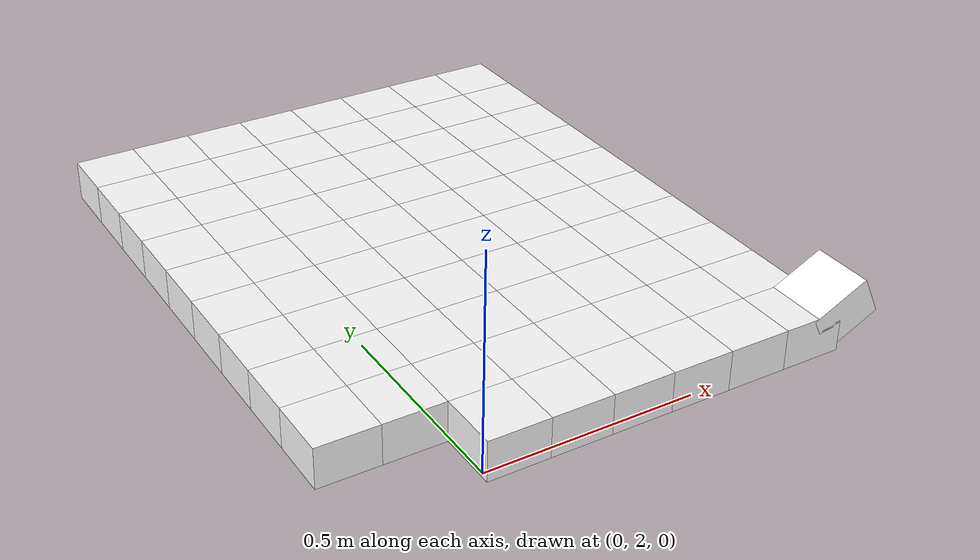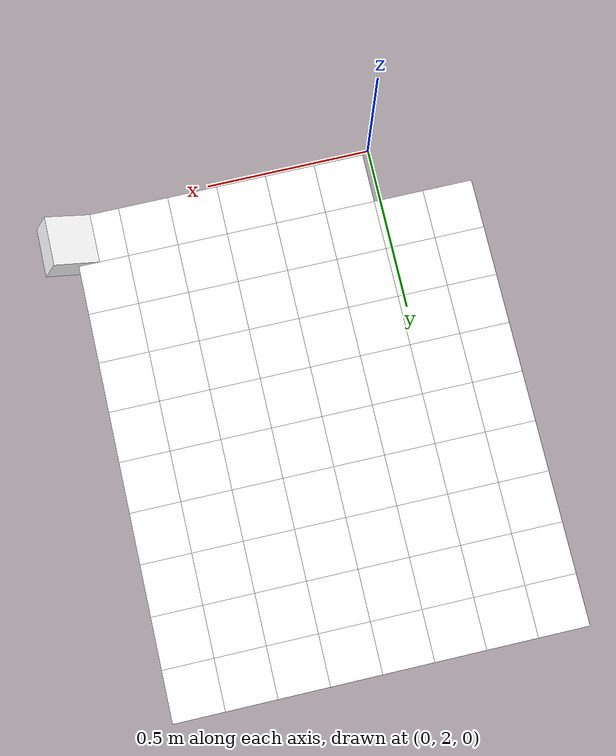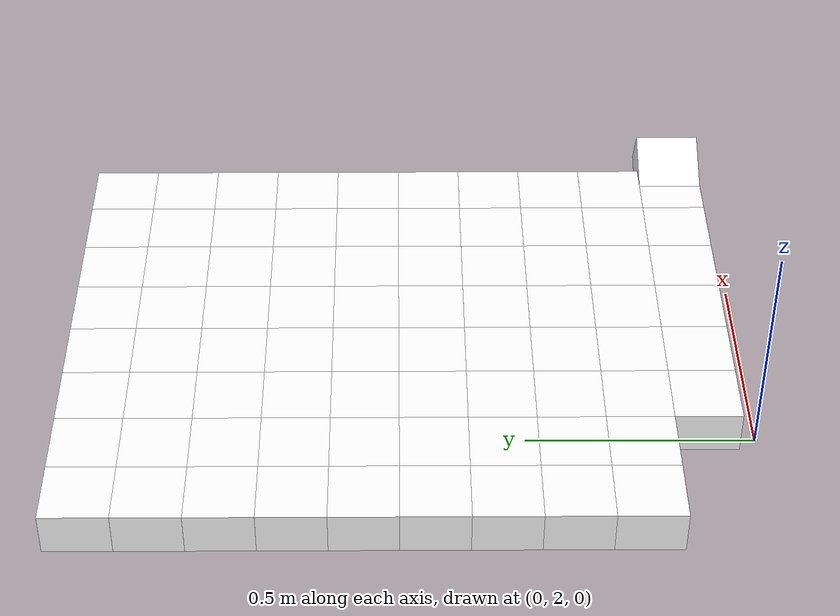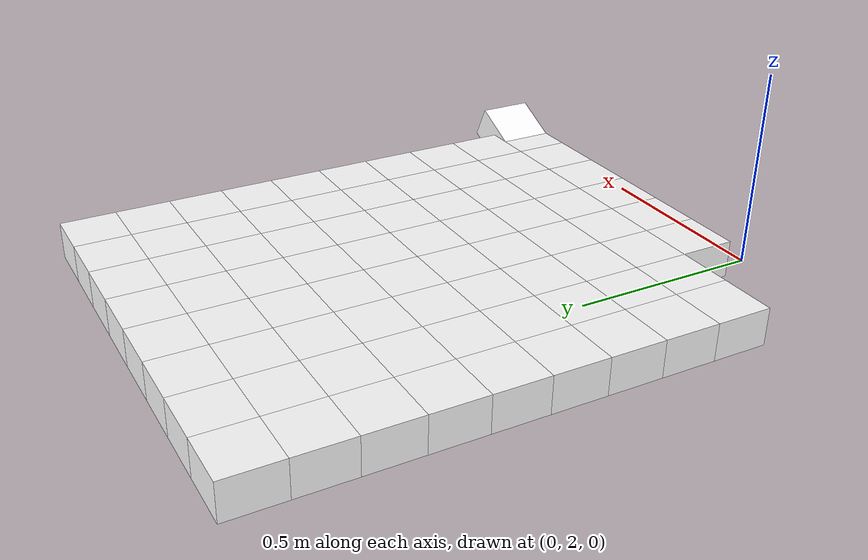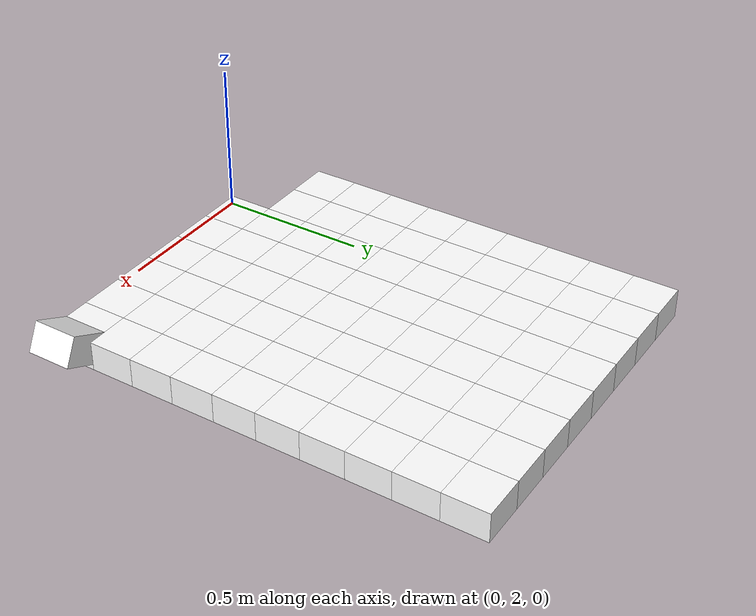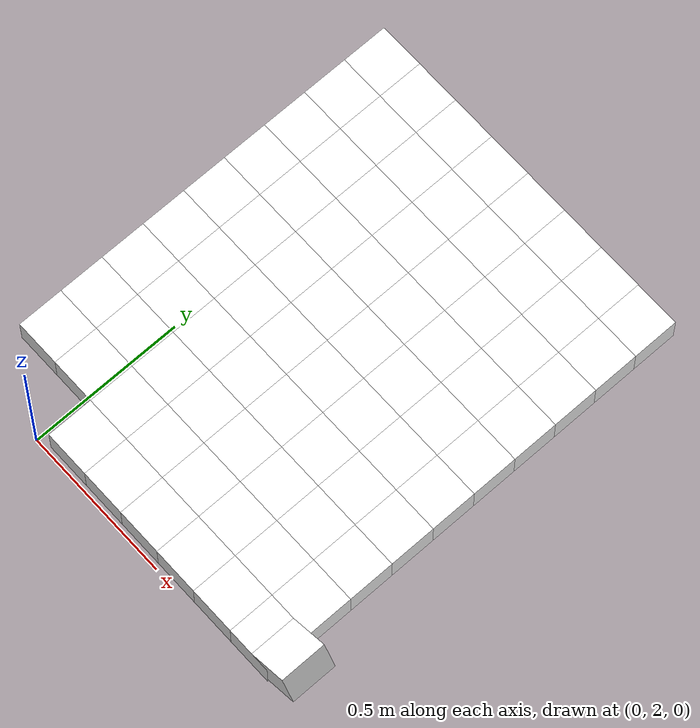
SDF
<sdf version="1.7">
 <world name="default">
  <include><uri>model://sun</uri></include>
  <model name="static_environment">
   <static>true</static>
   <link name="region_214">
    <pose>0.09999999999999964 2.0999999999999996 0.0 0.0 0.0 0.0</pose>
    <collision name="region_214_collision">
     <geometry><box><size>0.15 0.15 0.1</size></box></geometry>
     <surface><friction><ode><mu>1.0</mu><mu2>1.0</mu2></ode></friction></surface>
    </collision>
    <visual name="region_214_visual">
     <geometry><box><size>0.15 0.15 0.1</size></box></geometry>
     <material><ambient>1.0 1.0 1.0 1.0</ambient><diffuse>1.0 1.0 1.0 1.0</diffuse></material>
    </visual>
   </link>
   <link name="region_215">
    <pose>0.24999999999999956 2.0999999999999996 0.0 0.0 0.0 0.0</pose>
    <collision name="region_215_collision">
     <geometry><box><size>0.15 0.15 0.1</size></box></geometry>
     <surface><friction><ode><mu>1.0</mu><mu2>1.0</mu2></ode></friction></surface>
    </collision>
    <visual name="region_215_visual">
     <geometry><box><size>0.15 0.15 0.1</size></box></geometry>
     <material><ambient>1.0 1.0 1.0 1.0</ambient><diffuse>1.0 1.0 1.0 1.0</diffuse></material>
    </visual>
   </link>
   <link name="region_216">
    <pose>0.39999999999999947 2.0999999999999996 0.0 0.0 0.0 0.0</pose>
    <collision name="region_216_collision">
     <geometry><box><size>0.15 0.15 0.1</size></box></geometry>
     <surface><friction><ode><mu>1.0</mu><mu2>1.0</mu2></ode></friction></surface>
    </collision>
    <visual name="region_216_visual">
     <geometry><box><size>0.15 0.15 0.1</size></box></geometry>
     <material><ambient>1.0 1.0 1.0 1.0</ambient><diffuse>1.0 1.0 1.0 1.0</diffuse></material>
    </visual>
   </link>
   <link name="region_217">
    <pose>0.5499999999999994 2.0999999999999996 0.0 0.0 0.0 0.0</pose>
    <collision name="region_217_collision">
     <geometry><box><size>0.15 0.15 0.1</size></box></geometry>
     <surface><friction><ode><mu>1.0</mu><mu2>1.0</mu2></ode></friction></surface>
    </collision>
    <visual name="region_217_visual">
     <geometry><box><size>0.15 0.15 0.1</size></box></geometry>
     <material><ambient>1.0 1.0 1.0 1.0</ambient><diffuse>1.0 1.0 1.0 1.0</diffuse></material>
    </visual>
   </link>
   <link name="region_218">
    <pose>0.6999999999999993 2.0999999999999996 0.0 0.0 0.0 0.0</pose>
    <collision name="region_218_collision">
     <geometry><box><size>0.15 0.15 0.1</size></box></geometry>
     <surface><friction><ode><mu>1.0</mu><mu2>1.0</mu2></ode></friction></surface>
    </collision>
    <visual name="region_218_visual">
     <geometry><box><size>0.15 0.15 0.1</size></box></geometry>
     <material><ambient>1.0 1.0 1.0 1.0</ambient><diffuse>1.0 1.0 1.0 1.0</diffuse></material>
    </visual>
   </link>
   <link name="region_219">
    <pose>0.8499999999999992 2.0999999999999996 0.0 0.0 0.0 0.0</pose>
    <collision name="region_219_collision">
     <geometry><box><size>0.15 0.15 0.1</size></box></geometry>
     <surface><friction><ode><mu>1.0</mu><mu2>1.0</mu2></ode></friction></surface>
    </collision>
    <visual name="region_219_visual">
     <geometry><box><size>0.15 0.15 0.1</size></box></geometry>
     <material><ambient>1.0 1.0 1.0 1.0</ambient><diffuse>1.0 1.0 1.0 1.0</diffuse></material>
    </visual>
   </link>
   <link name="region_232">
    <pose>-0.2000000000000004 2.2499999999999996 0.0 0.0 0.0 0.0</pose>
    <collision name="region_232_collision">
     <geometry><box><size>0.15 0.15 0.1</size></box></geometry>
     <surface><friction><ode><mu>1.0</mu><mu2>1.0</mu2></ode></friction></surface>
    </collision>
    <visual name="region_232_visual">
     <geometry><box><size>0.15 0.15 0.1</size></box></geometry>
     <material><ambient>1.0 1.0 1.0 1.0</ambient><diffuse>1.0 1.0 1.0 1.0</diffuse></material>
    </visual>
   </link>
   <link name="region_233">
    <pose>-0.05000000000000049 2.2499999999999996 0.0 0.0 0.0 0.0</pose>
    <collision name="region_233_collision">
     <geometry><box><size>0.15 0.15 0.1</size></box></geometry>
     <surface><friction><ode><mu>1.0</mu><mu2>1.0</mu2></ode></friction></surface>
    </collision>
    <visual name="region_233_visual">
     <geometry><box><size>0.15 0.15 0.1</size></box></geometry>
     <material><ambient>1.0 1.0 1.0 1.0</ambient><diffuse>1.0 1.0 1.0 1.0</diffuse></material>
    </visual>
   </link>
   <link name="region_234">
    <pose>0.09999999999999964 2.2499999999999996 0.0 0.0 0.0 0.0</pose>
    <collision name="region_234_collision">
     <geometry><box><size>0.15 0.15 0.1</size></box></geometry>
     <surface><friction><ode><mu>1.0</mu><mu2>1.0</mu2></ode></friction></surface>
    </collision>
    <visual name="region_234_visual">
     <geometry><box><size>0.15 0.15 0.1</size></box></geometry>
     <material><ambient>1.0 1.0 1.0 1.0</ambient><diffuse>1.0 1.0 1.0 1.0</diffuse></material>
    </visual>
   </link>
   <link name="region_235">
    <pose>0.24999999999999956 2.2499999999999996 0.0 0.0 0.0 0.0</pose>
    <collision name="region_235_collision">
     <geometry><box><size>0.15 0.15 0.1</size></box></geometry>
     <surface><friction><ode><mu>1.0</mu><mu2>1.0</mu2></ode></friction></surface>
    </collision>
    <visual name="region_235_visual">
     <geometry><box><size>0.15 0.15 0.1</size></box></geometry>
     <material><ambient>1.0 1.0 1.0 1.0</ambient><diffuse>1.0 1.0 1.0 1.0</diffuse></material>
    </visual>
   </link>
   <link name="region_236">
    <pose>0.39999999999999947 2.2499999999999996 0.0 0.0 0.0 0.0</pose>
    <collision name="region_236_collision">
     <geometry><box><size>0.15 0.15 0.1</size></box></geometry>
     <surface><friction><ode><mu>1.0</mu><mu2>1.0</mu2></ode></friction></surface>
    </collision>
    <visual name="region_236_visual">
     <geometry><box><size>0.15 0.15 0.1</size></box></geometry>
     <material><ambient>1.0 1.0 1.0 1.0</ambient><diffuse>1.0 1.0 1.0 1.0</diffuse></material>
    </visual>
   </link>
   <link name="region_237">
    <pose>0.5499999999999994 2.2499999999999996 0.0 0.0 0.0 0.0</pose>
    <collision name="region_237_collision">
     <geometry><box><size>0.15 0.15 0.1</size></box></geometry>
     <surface><friction><ode><mu>1.0</mu><mu2>1.0</mu2></ode></friction></surface>
    </collision>
    <visual name="region_237_visual">
     <geometry><box><size>0.15 0.15 0.1</size></box></geometry>
     <material><ambient>1.0 1.0 1.0 1.0</ambient><diffuse>1.0 1.0 1.0 1.0</diffuse></material>
    </visual>
   </link>
   <link name="region_238">
    <pose>0.6999999999999993 2.2499999999999996 0.0 0.0 0.0 0.0</pose>
    <collision name="region_238_collision">
     <geometry><box><size>0.15 0.15 0.1</size></box></geometry>
     <surface><friction><ode><mu>1.0</mu><mu2>1.0</mu2></ode></friction></surface>
    </collision>
    <visual name="region_238_visual">
     <geometry><box><size>0.15 0.15 0.1</size></box></geometry>
     <material><ambient>1.0 1.0 1.0 1.0</ambient><diffuse>1.0 1.0 1.0 1.0</diffuse></material>
    </visual>
   </link>
   <link name="region_239">
    <pose>0.8499999999999992 2.2499999999999996 0.0 0.0 0.0 0.0</pose>
    <collision name="region_239_collision">
     <geometry><box><size>0.15 0.15 0.1</size></box></geometry>
     <surface><friction><ode><mu>1.0</mu><mu2>1.0</mu2></ode></friction></surface>
    </collision>
    <visual name="region_239_visual">
     <geometry><box><size>0.15 0.15 0.1</size></box></geometry>
     <material><ambient>1.0 1.0 1.0 1.0</ambient><diffuse>1.0 1.0 1.0 1.0</diffuse></material>
    </visual>
   </link>
   <link name="region_252">
    <pose>-0.2000000000000004 2.3999999999999995 0.0 0.0 0.0 0.0</pose>
    <collision name="region_252_collision">
     <geometry><box><size>0.15 0.15 0.1</size></box></geometry>
     <surface><friction><ode><mu>1.0</mu><mu2>1.0</mu2></ode></friction></surface>
    </collision>
    <visual name="region_252_visual">
     <geometry><box><size>0.15 0.15 0.1</size></box></geometry>
     <material><ambient>1.0 1.0 1.0 1.0</ambient><diffuse>1.0 1.0 1.0 1.0</diffuse></material>
    </visual>
   </link>
   <link name="region_253">
    <pose>-0.05000000000000049 2.3999999999999995 0.0 0.0 0.0 0.0</pose>
    <collision name="region_253_collision">
     <geometry><box><size>0.15 0.15 0.1</size></box></geometry>
     <surface><friction><ode><mu>1.0</mu><mu2>1.0</mu2></ode></friction></surface>
    </collision>
    <visual name="region_253_visual">
     <geometry><box><size>0.15 0.15 0.1</size></box></geometry>
     <material><ambient>1.0 1.0 1.0 1.0</ambient><diffuse>1.0 1.0 1.0 1.0</diffuse></material>
    </visual>
   </link>
   <link name="region_254">
    <pose>0.09999999999999964 2.3999999999999995 0.0 0.0 0.0 0.0</pose>
    <collision name="region_254_collision">
     <geometry><box><size>0.15 0.15 0.1</size></box></geometry>
     <surface><friction><ode><mu>1.0</mu><mu2>1.0</mu2></ode></friction></surface>
    </collision>
    <visual name="region_254_visual">
     <geometry><box><size>0.15 0.15 0.1</size></box></geometry>
     <material><ambient>1.0 1.0 1.0 1.0</ambient><diffuse>1.0 1.0 1.0 1.0</diffuse></material>
    </visual>
   </link>
   <link name="region_255">
    <pose>0.24999999999999956 2.3999999999999995 0.0 0.0 0.0 0.0</pose>
    <collision name="region_255_collision">
     <geometry><box><size>0.15 0.15 0.1</size></box></geometry>
     <surface><friction><ode><mu>1.0</mu><mu2>1.0</mu2></ode></friction></surface>
    </collision>
    <visual name="region_255_visual">
     <geometry><box><size>0.15 0.15 0.1</size></box></geometry>
     <material><ambient>1.0 1.0 1.0 1.0</ambient><diffuse>1.0 1.0 1.0 1.0</diffuse></material>
    </visual>
   </link>
   <link name="region_256">
    <pose>0.39999999999999947 2.3999999999999995 0.0 0.0 0.0 0.0</pose>
    <collision name="region_256_collision">
     <geometry><box><size>0.15 0.15 0.1</size></box></geometry>
     <surface><friction><ode><mu>1.0</mu><mu2>1.0</mu2></ode></friction></surface>
    </collision>
    <visual name="region_256_visual">
     <geometry><box><size>0.15 0.15 0.1</size></box></geometry>
     <material><ambient>1.0 1.0 1.0 1.0</ambient><diffuse>1.0 1.0 1.0 1.0</diffuse></material>
    </visual>
   </link>
   <link name="region_257">
    <pose>0.5499999999999994 2.3999999999999995 0.0 0.0 0.0 0.0</pose>
    <collision name="region_257_collision">
     <geometry><box><size>0.15 0.15 0.1</size></box></geometry>
     <surface><friction><ode><mu>1.0</mu><mu2>1.0</mu2></ode></friction></surface>
    </collision>
    <visual name="region_257_visual">
     <geometry><box><size>0.15 0.15 0.1</size></box></geometry>
     <material><ambient>1.0 1.0 1.0 1.0</ambient><diffuse>1.0 1.0 1.0 1.0</diffuse></material>
    </visual>
   </link>
   <link name="region_258">
    <pose>0.6999999999999993 2.3999999999999995 0.0 0.0 0.0 0.0</pose>
    <collision name="region_258_collision">
     <geometry><box><size>0.15 0.15 0.1</size></box></geometry>
     <surface><friction><ode><mu>1.0</mu><mu2>1.0</mu2></ode></friction></surface>
    </collision>
    <visual name="region_258_visual">
     <geometry><box><size>0.15 0.15 0.1</size></box></geometry>
     <material><ambient>1.0 1.0 1.0 1.0</ambient><diffuse>1.0 1.0 1.0 1.0</diffuse></material>
    </visual>
   </link>
   <link name="region_259">
    <pose>0.8499999999999992 2.3999999999999995 0.0 0.0 0.0 0.0</pose>
    <collision name="region_259_collision">
     <geometry><box><size>0.15 0.15 0.1</size></box></geometry>
     <surface><friction><ode><mu>1.0</mu><mu2>1.0</mu2></ode></friction></surface>
    </collision>
    <visual name="region_259_visual">
     <geometry><box><size>0.15 0.15 0.1</size></box></geometry>
     <material><ambient>1.0 1.0 1.0 1.0</ambient><diffuse>1.0 1.0 1.0 1.0</diffuse></material>
    </visual>
   </link>
   <link name="region_272">
    <pose>-0.2000000000000004 2.5499999999999994 0.0 0.0 0.0 0.0</pose>
    <collision name="region_272_collision">
     <geometry><box><size>0.15 0.15 0.1</size></box></geometry>
     <surface><friction><ode><mu>1.0</mu><mu2>1.0</mu2></ode></friction></surface>
    </collision>
    <visual name="region_272_visual">
     <geometry><box><size>0.15 0.15 0.1</size></box></geometry>
     <material><ambient>1.0 1.0 1.0 1.0</ambient><diffuse>1.0 1.0 1.0 1.0</diffuse></material>
    </visual>
   </link>
   <link name="region_273">
    <pose>-0.05000000000000049 2.5499999999999994 0.0 0.0 0.0 0.0</pose>
    <collision name="region_273_collision">
     <geometry><box><size>0.15 0.15 0.1</size></box></geometry>
     <surface><friction><ode><mu>1.0</mu><mu2>1.0</mu2></ode></friction></surface>
    </collision>
    <visual name="region_273_visual">
     <geometry><box><size>0.15 0.15 0.1</size></box></geometry>
     <material><ambient>1.0 1.0 1.0 1.0</ambient><diffuse>1.0 1.0 1.0 1.0</diffuse></material>
    </visual>
   </link>
   <link name="region_274">
    <pose>0.09999999999999964 2.5499999999999994 0.0 0.0 0.0 0.0</pose>
    <collision name="region_274_collision">
     <geometry><box><size>0.15 0.15 0.1</size></box></geometry>
     <surface><friction><ode><mu>1.0</mu><mu2>1.0</mu2></ode></friction></surface>
    </collision>
    <visual name="region_274_visual">
     <geometry><box><size>0.15 0.15 0.1</size></box></geometry>
     <material><ambient>1.0 1.0 1.0 1.0</ambient><diffuse>1.0 1.0 1.0 1.0</diffuse></material>
    </visual>
   </link>
   <link name="region_275">
    <pose>0.24999999999999956 2.5499999999999994 0.0 0.0 0.0 0.0</pose>
    <collision name="region_275_collision">
     <geometry><box><size>0.15 0.15 0.1</size></box></geometry>
     <surface><friction><ode><mu>1.0</mu><mu2>1.0</mu2></ode></friction></surface>
    </collision>
    <visual name="region_275_visual">
     <geometry><box><size>0.15 0.15 0.1</size></box></geometry>
     <material><ambient>1.0 1.0 1.0 1.0</ambient><diffuse>1.0 1.0 1.0 1.0</diffuse></material>
    </visual>
   </link>
   <link name="region_276">
    <pose>0.39999999999999947 2.5499999999999994 0.0 0.0 0.0 0.0</pose>
    <collision name="region_276_collision">
     <geometry><box><size>0.15 0.15 0.1</size></box></geometry>
     <surface><friction><ode><mu>1.0</mu><mu2>1.0</mu2></ode></friction></surface>
    </collision>
    <visual name="region_276_visual">
     <geometry><box><size>0.15 0.15 0.1</size></box></geometry>
     <material><ambient>1.0 1.0 1.0 1.0</ambient><diffuse>1.0 1.0 1.0 1.0</diffuse></material>
    </visual>
   </link>
   <link name="region_277">
    <pose>0.5499999999999994 2.5499999999999994 0.0 0.0 0.0 0.0</pose>
    <collision name="region_277_collision">
     <geometry><box><size>0.15 0.15 0.1</size></box></geometry>
     <surface><friction><ode><mu>1.0</mu><mu2>1.0</mu2></ode></friction></surface>
    </collision>
    <visual name="region_277_visual">
     <geometry><box><size>0.15 0.15 0.1</size></box></geometry>
     <material><ambient>1.0 1.0 1.0 1.0</ambient><diffuse>1.0 1.0 1.0 1.0</diffuse></material>
    </visual>
   </link>
   <link name="region_278">
    <pose>0.6999999999999993 2.5499999999999994 0.0 0.0 0.0 0.0</pose>
    <collision name="region_278_collision">
     <geometry><box><size>0.15 0.15 0.1</size></box></geometry>
     <surface><friction><ode><mu>1.0</mu><mu2>1.0</mu2></ode></friction></surface>
    </collision>
    <visual name="region_278_visual">
     <geometry><box><size>0.15 0.15 0.1</size></box></geometry>
     <material><ambient>1.0 1.0 1.0 1.0</ambient><diffuse>1.0 1.0 1.0 1.0</diffuse></material>
    </visual>
   </link>
   <link name="region_279">
    <pose>0.8499999999999992 2.5499999999999994 0.0 0.0 0.0 0.0</pose>
    <collision name="region_279_collision">
     <geometry><box><size>0.15 0.15 0.1</size></box></geometry>
     <surface><friction><ode><mu>1.0</mu><mu2>1.0</mu2></ode></friction></surface>
    </collision>
    <visual name="region_279_visual">
     <geometry><box><size>0.15 0.15 0.1</size></box></geometry>
     <material><ambient>1.0 1.0 1.0 1.0</ambient><diffuse>1.0 1.0 1.0 1.0</diffuse></material>
    </visual>
   </link>
   <link name="region_292">
    <pose>-0.2000000000000004 2.6999999999999997 0.0 0.0 0.0 0.0</pose>
    <collision name="region_292_collision">
     <geometry><box><size>0.15 0.15 0.1</size></box></geometry>
     <surface><friction><ode><mu>1.0</mu><mu2>1.0</mu2></ode></friction></surface>
    </collision>
    <visual name="region_292_visual">
     <geometry><box><size>0.15 0.15 0.1</size></box></geometry>
     <material><ambient>1.0 1.0 1.0 1.0</ambient><diffuse>1.0 1.0 1.0 1.0</diffuse></material>
    </visual>
   </link>
   <link name="region_293">
    <pose>-0.05000000000000049 2.6999999999999997 0.0 0.0 0.0 0.0</pose>
    <collision name="region_293_collision">
     <geometry><box><size>0.15 0.15 0.1</size></box></geometry>
     <surface><friction><ode><mu>1.0</mu><mu2>1.0</mu2></ode></friction></surface>
    </collision>
    <visual name="region_293_visual">
     <geometry><box><size>0.15 0.15 0.1</size></box></geometry>
     <material><ambient>1.0 1.0 1.0 1.0</ambient><diffuse>1.0 1.0 1.0 1.0</diffuse></material>
    </visual>
   </link>
   <link name="region_294">
    <pose>0.09999999999999964 2.6999999999999997 0.0 0.0 0.0 0.0</pose>
    <collision name="region_294_collision">
     <geometry><box><size>0.15 0.15 0.1</size></box></geometry>
     <surface><friction><ode><mu>1.0</mu><mu2>1.0</mu2></ode></friction></surface>
    </collision>
    <visual name="region_294_visual">
     <geometry><box><size>0.15 0.15 0.1</size></box></geometry>
     <material><ambient>1.0 1.0 1.0 1.0</ambient><diffuse>1.0 1.0 1.0 1.0</diffuse></material>
    </visual>
   </link>
   <link name="region_295">
    <pose>0.24999999999999956 2.6999999999999997 0.0 0.0 0.0 0.0</pose>
    <collision name="region_295_collision">
     <geometry><box><size>0.15 0.15 0.1</size></box></geometry>
     <surface><friction><ode><mu>1.0</mu><mu2>1.0</mu2></ode></friction></surface>
    </collision>
    <visual name="region_295_visual">
     <geometry><box><size>0.15 0.15 0.1</size></box></geometry>
     <material><ambient>1.0 1.0 1.0 1.0</ambient><diffuse>1.0 1.0 1.0 1.0</diffuse></material>
    </visual>
   </link>
   <link name="region_296">
    <pose>0.39999999999999947 2.6999999999999997 0.0 0.0 0.0 0.0</pose>
    <collision name="region_296_collision">
     <geometry><box><size>0.15 0.15 0.1</size></box></geometry>
     <surface><friction><ode><mu>1.0</mu><mu2>1.0</mu2></ode></friction></surface>
    </collision>
    <visual name="region_296_visual">
     <geometry><box><size>0.15 0.15 0.1</size></box></geometry>
     <material><ambient>1.0 1.0 1.0 1.0</ambient><diffuse>1.0 1.0 1.0 1.0</diffuse></material>
    </visual>
   </link>
   <link name="region_297">
    <pose>0.5499999999999994 2.6999999999999997 0.0 0.0 0.0 0.0</pose>
    <collision name="region_297_collision">
     <geometry><box><size>0.15 0.15 0.1</size></box></geometry>
     <surface><friction><ode><mu>1.0</mu><mu2>1.0</mu2></ode></friction></surface>
    </collision>
    <visual name="region_297_visual">
     <geometry><box><size>0.15 0.15 0.1</size></box></geometry>
     <material><ambient>1.0 1.0 1.0 1.0</ambient><diffuse>1.0 1.0 1.0 1.0</diffuse></material>
    </visual>
   </link>
   <link name="region_298">
    <pose>0.6999999999999993 2.6999999999999997 0.0 0.0 0.0 0.0</pose>
    <collision name="region_298_collision">
     <geometry><box><size>0.15 0.15 0.1</size></box></geometry>
     <surface><friction><ode><mu>1.0</mu><mu2>1.0</mu2></ode></friction></surface>
    </collision>
    <visual name="region_298_visual">
     <geometry><box><size>0.15 0.15 0.1</size></box></geometry>
     <material><ambient>1.0 1.0 1.0 1.0</ambient><diffuse>1.0 1.0 1.0 1.0</diffuse></material>
    </visual>
   </link>
   <link name="region_299">
    <pose>0.8499999999999992 2.6999999999999997 0.0 0.0 0.0 0.0</pose>
    <collision name="region_299_collision">
     <geometry><box><size>0.15 0.15 0.1</size></box></geometry>
     <surface><friction><ode><mu>1.0</mu><mu2>1.0</mu2></ode></friction></surface>
    </collision>
    <visual name="region_299_visual">
     <geometry><box><size>0.15 0.15 0.1</size></box></geometry>
     <material><ambient>1.0 1.0 1.0 1.0</ambient><diffuse>1.0 1.0 1.0 1.0</diffuse></material>
    </visual>
   </link>
   <link name="region_312">
    <pose>-0.2000000000000004 2.8499999999999996 0.0 0.0 0.0 0.0</pose>
    <collision name="region_312_collision">
     <geometry><box><size>0.15 0.15 0.1</size></box></geometry>
     <surface><friction><ode><mu>1.0</mu><mu2>1.0</mu2></ode></friction></surface>
    </collision>
    <visual name="region_312_visual">
     <geometry><box><size>0.15 0.15 0.1</size></box></geometry>
     <material><ambient>1.0 1.0 1.0 1.0</ambient><diffuse>1.0 1.0 1.0 1.0</diffuse></material>
    </visual>
   </link>
   <link name="region_313">
    <pose>-0.05000000000000049 2.8499999999999996 0.0 0.0 0.0 0.0</pose>
    <collision name="region_313_collision">
     <geometry><box><size>0.15 0.15 0.1</size></box></geometry>
     <surface><friction><ode><mu>1.0</mu><mu2>1.0</mu2></ode></friction></surface>
    </collision>
    <visual name="region_313_visual">
     <geometry><box><size>0.15 0.15 0.1</size></box></geometry>
     <material><ambient>1.0 1.0 1.0 1.0</ambient><diffuse>1.0 1.0 1.0 1.0</diffuse></material>
    </visual>
   </link>
   <link name="region_314">
    <pose>0.09999999999999964 2.8499999999999996 0.0 0.0 0.0 0.0</pose>
    <collision name="region_314_collision">
     <geometry><box><size>0.15 0.15 0.1</size></box></geometry>
     <surface><friction><ode><mu>1.0</mu><mu2>1.0</mu2></ode></friction></surface>
    </collision>
    <visual name="region_314_visual">
     <geometry><box><size>0.15 0.15 0.1</size></box></geometry>
     <material><ambient>1.0 1.0 1.0 1.0</ambient><diffuse>1.0 1.0 1.0 1.0</diffuse></material>
    </visual>
   </link>
   <link name="region_315">
    <pose>0.24999999999999956 2.8499999999999996 0.0 0.0 0.0 0.0</pose>
    <collision name="region_315_collision">
     <geometry><box><size>0.15 0.15 0.1</size></box></geometry>
     <surface><friction><ode><mu>1.0</mu><mu2>1.0</mu2></ode></friction></surface>
    </collision>
    <visual name="region_315_visual">
     <geometry><box><size>0.15 0.15 0.1</size></box></geometry>
     <material><ambient>1.0 1.0 1.0 1.0</ambient><diffuse>1.0 1.0 1.0 1.0</diffuse></material>
    </visual>
   </link>
   <link name="region_316">
    <pose>0.39999999999999947 2.8499999999999996 0.0 0.0 0.0 0.0</pose>
    <collision name="region_316_collision">
     <geometry><box><size>0.15 0.15 0.1</size></box></geometry>
     <surface><friction><ode><mu>1.0</mu><mu2>1.0</mu2></ode></friction></surface>
    </collision>
    <visual name="region_316_visual">
     <geometry><box><size>0.15 0.15 0.1</size></box></geometry>
     <material><ambient>1.0 1.0 1.0 1.0</ambient><diffuse>1.0 1.0 1.0 1.0</diffuse></material>
    </visual>
   </link>
   <link name="region_317">
    <pose>0.5499999999999994 2.8499999999999996 0.0 0.0 0.0 0.0</pose>
    <collision name="region_317_collision">
     <geometry><box><size>0.15 0.15 0.1</size></box></geometry>
     <surface><friction><ode><mu>1.0</mu><mu2>1.0</mu2></ode></friction></surface>
    </collision>
    <visual name="region_317_visual">
     <geometry><box><size>0.15 0.15 0.1</size></box></geometry>
     <material><ambient>1.0 1.0 1.0 1.0</ambient><diffuse>1.0 1.0 1.0 1.0</diffuse></material>
    </visual>
   </link>
   <link name="region_318">
    <pose>0.6999999999999993 2.8499999999999996 0.0 0.0 0.0 0.0</pose>
    <collision name="region_318_collision">
     <geometry><box><size>0.15 0.15 0.1</size></box></geometry>
     <surface><friction><ode><mu>1.0</mu><mu2>1.0</mu2></ode></friction></surface>
    </collision>
    <visual name="region_318_visual">
     <geometry><box><size>0.15 0.15 0.1</size></box></geometry>
     <material><ambient>1.0 1.0 1.0 1.0</ambient><diffuse>1.0 1.0 1.0 1.0</diffuse></material>
    </visual>
   </link>
   <link name="region_319">
    <pose>0.8499999999999992 2.8499999999999996 0.0 0.0 0.0 0.0</pose>
    <collision name="region_319_collision">
     <geometry><box><size>0.15 0.15 0.1</size></box></geometry>
     <surface><friction><ode><mu>1.0</mu><mu2>1.0</mu2></ode></friction></surface>
    </collision>
    <visual name="region_319_visual">
     <geometry><box><size>0.15 0.15 0.1</size></box></geometry>
     <material><ambient>1.0 1.0 1.0 1.0</ambient><diffuse>1.0 1.0 1.0 1.0</diffuse></material>
    </visual>
   </link>
   <link name="region_332">
    <pose>-0.2000000000000004 2.9999999999999996 0.0 0.0 0.0 0.0</pose>
    <collision name="region_332_collision">
     <geometry><box><size>0.15 0.15 0.1</size></box></geometry>
     <surface><friction><ode><mu>1.0</mu><mu2>1.0</mu2></ode></friction></surface>
    </collision>
    <visual name="region_332_visual">
     <geometry><box><size>0.15 0.15 0.1</size></box></geometry>
     <material><ambient>1.0 1.0 1.0 1.0</ambient><diffuse>1.0 1.0 1.0 1.0</diffuse></material>
    </visual>
   </link>
   <link name="region_333">
    <pose>-0.05000000000000049 2.9999999999999996 0.0 0.0 0.0 0.0</pose>
    <collision name="region_333_collision">
     <geometry><box><size>0.15 0.15 0.1</size></box></geometry>
     <surface><friction><ode><mu>1.0</mu><mu2>1.0</mu2></ode></friction></surface>
    </collision>
    <visual name="region_333_visual">
     <geometry><box><size>0.15 0.15 0.1</size></box></geometry>
     <material><ambient>1.0 1.0 1.0 1.0</ambient><diffuse>1.0 1.0 1.0 1.0</diffuse></material>
    </visual>
   </link>
   <link name="region_334">
    <pose>0.09999999999999964 2.9999999999999996 0.0 0.0 0.0 0.0</pose>
    <collision name="region_334_collision">
     <geometry><box><size>0.15 0.15 0.1</size></box></geometry>
     <surface><friction><ode><mu>1.0</mu><mu2>1.0</mu2></ode></friction></surface>
    </collision>
    <visual name="region_334_visual">
     <geometry><box><size>0.15 0.15 0.1</size></box></geometry>
     <material><ambient>1.0 1.0 1.0 1.0</ambient><diffuse>1.0 1.0 1.0 1.0</diffuse></material>
    </visual>
   </link>
   <link name="region_335">
    <pose>0.24999999999999956 2.9999999999999996 0.0 0.0 0.0 0.0</pose>
    <collision name="region_335_collision">
     <geometry><box><size>0.15 0.15 0.1</size></box></geometry>
     <surface><friction><ode><mu>1.0</mu><mu2>1.0</mu2></ode></friction></surface>
    </collision>
    <visual name="region_335_visual">
     <geometry><box><size>0.15 0.15 0.1</size></box></geometry>
     <material><ambient>1.0 1.0 1.0 1.0</ambient><diffuse>1.0 1.0 1.0 1.0</diffuse></material>
    </visual>
   </link>
   <link name="region_336">
    <pose>0.39999999999999947 2.9999999999999996 0.0 0.0 0.0 0.0</pose>
    <collision name="region_336_collision">
     <geometry><box><size>0.15 0.15 0.1</size></box></geometry>
     <surface><friction><ode><mu>1.0</mu><mu2>1.0</mu2></ode></friction></surface>
    </collision>
    <visual name="region_336_visual">
     <geometry><box><size>0.15 0.15 0.1</size></box></geometry>
     <material><ambient>1.0 1.0 1.0 1.0</ambient><diffuse>1.0 1.0 1.0 1.0</diffuse></material>
    </visual>
   </link>
   <link name="region_337">
    <pose>0.5499999999999994 2.9999999999999996 0.0 0.0 0.0 0.0</pose>
    <collision name="region_337_collision">
     <geometry><box><size>0.15 0.15 0.1</size></box></geometry>
     <surface><friction><ode><mu>1.0</mu><mu2>1.0</mu2></ode></friction></surface>
    </collision>
    <visual name="region_337_visual">
     <geometry><box><size>0.15 0.15 0.1</size></box></geometry>
     <material><ambient>1.0 1.0 1.0 1.0</ambient><diffuse>1.0 1.0 1.0 1.0</diffuse></material>
    </visual>
   </link>
   <link name="region_338">
    <pose>0.6999999999999993 2.9999999999999996 0.0 0.0 0.0 0.0</pose>
    <collision name="region_338_collision">
     <geometry><box><size>0.15 0.15 0.1</size></box></geometry>
     <surface><friction><ode><mu>1.0</mu><mu2>1.0</mu2></ode></friction></surface>
    </collision>
    <visual name="region_338_visual">
     <geometry><box><size>0.15 0.15 0.1</size></box></geometry>
     <material><ambient>1.0 1.0 1.0 1.0</ambient><diffuse>1.0 1.0 1.0 1.0</diffuse></material>
    </visual>
   </link>
   <link name="region_339">
    <pose>0.8499999999999992 2.9999999999999996 0.0 0.0 0.0 0.0</pose>
    <collision name="region_339_collision">
     <geometry><box><size>0.15 0.15 0.1</size></box></geometry>
     <surface><friction><ode><mu>1.0</mu><mu2>1.0</mu2></ode></friction></surface>
    </collision>
    <visual name="region_339_visual">
     <geometry><box><size>0.15 0.15 0.1</size></box></geometry>
     <material><ambient>1.0 1.0 1.0 1.0</ambient><diffuse>1.0 1.0 1.0 1.0</diffuse></material>
    </visual>
   </link>
   <link name="region_352">
    <pose>-0.2000000000000004 3.1499999999999995 0.0 0.0 0.0 0.0</pose>
    <collision name="region_352_collision">
     <geometry><box><size>0.15 0.15 0.1</size></box></geometry>
     <surface><friction><ode><mu>1.0</mu><mu2>1.0</mu2></ode></friction></surface>
    </collision>
    <visual name="region_352_visual">
     <geometry><box><size>0.15 0.15 0.1</size></box></geometry>
     <material><ambient>1.0 1.0 1.0 1.0</ambient><diffuse>1.0 1.0 1.0 1.0</diffuse></material>
    </visual>
   </link>
   <link name="region_353">
    <pose>-0.05000000000000049 3.1499999999999995 0.0 0.0 0.0 0.0</pose>
    <collision name="region_353_collision">
     <geometry><box><size>0.15 0.15 0.1</size></box></geometry>
     <surface><friction><ode><mu>1.0</mu><mu2>1.0</mu2></ode></friction></surface>
    </collision>
    <visual name="region_353_visual">
     <geometry><box><size>0.15 0.15 0.1</size></box></geometry>
     <material><ambient>1.0 1.0 1.0 1.0</ambient><diffuse>1.0 1.0 1.0 1.0</diffuse></material>
    </visual>
   </link>
   <link name="region_354">
    <pose>0.09999999999999964 3.1499999999999995 0.0 0.0 0.0 0.0</pose>
    <collision name="region_354_collision">
     <geometry><box><size>0.15 0.15 0.1</size></box></geometry>
     <surface><friction><ode><mu>1.0</mu><mu2>1.0</mu2></ode></friction></surface>
    </collision>
    <visual name="region_354_visual">
     <geometry><box><size>0.15 0.15 0.1</size></box></geometry>
     <material><ambient>1.0 1.0 1.0 1.0</ambient><diffuse>1.0 1.0 1.0 1.0</diffuse></material>
    </visual>
   </link>
   <link name="region_355">
    <pose>0.24999999999999956 3.1499999999999995 0.0 0.0 0.0 0.0</pose>
    <collision name="region_355_collision">
     <geometry><box><size>0.15 0.15 0.1</size></box></geometry>
     <surface><friction><ode><mu>1.0</mu><mu2>1.0</mu2></ode></friction></surface>
    </collision>
    <visual name="region_355_visual">
     <geometry><box><size>0.15 0.15 0.1</size></box></geometry>
     <material><ambient>1.0 1.0 1.0 1.0</ambient><diffuse>1.0 1.0 1.0 1.0</diffuse></material>
    </visual>
   </link>
   <link name="region_356">
    <pose>0.39999999999999947 3.1499999999999995 0.0 0.0 0.0 0.0</pose>
    <collision name="region_356_collision">
     <geometry><box><size>0.15 0.15 0.1</size></box></geometry>
     <surface><friction><ode><mu>1.0</mu><mu2>1.0</mu2></ode></friction></surface>
    </collision>
    <visual name="region_356_visual">
     <geometry><box><size>0.15 0.15 0.1</size></box></geometry>
     <material><ambient>1.0 1.0 1.0 1.0</ambient><diffuse>1.0 1.0 1.0 1.0</diffuse></material>
    </visual>
   </link>
   <link name="region_357">
    <pose>0.5499999999999994 3.1499999999999995 0.0 0.0 0.0 0.0</pose>
    <collision name="region_357_collision">
     <geometry><box><size>0.15 0.15 0.1</size></box></geometry>
     <surface><friction><ode><mu>1.0</mu><mu2>1.0</mu2></ode></friction></surface>
    </collision>
    <visual name="region_357_visual">
     <geometry><box><size>0.15 0.15 0.1</size></box></geometry>
     <material><ambient>1.0 1.0 1.0 1.0</ambient><diffuse>1.0 1.0 1.0 1.0</diffuse></material>
    </visual>
   </link>
   <link name="region_358">
    <pose>0.6999999999999993 3.1499999999999995 0.0 0.0 0.0 0.0</pose>
    <collision name="region_358_collision">
     <geometry><box><size>0.15 0.15 0.1</size></box></geometry>
     <surface><friction><ode><mu>1.0</mu><mu2>1.0</mu2></ode></friction></surface>
    </collision>
    <visual name="region_358_visual">
     <geometry><box><size>0.15 0.15 0.1</size></box></geometry>
     <material><ambient>1.0 1.0 1.0 1.0</ambient><diffuse>1.0 1.0 1.0 1.0</diffuse></material>
    </visual>
   </link>
   <link name="region_359">
    <pose>0.8499999999999992 3.1499999999999995 0.0 0.0 0.0 0.0</pose>
    <collision name="region_359_collision">
     <geometry><box><size>0.15 0.15 0.1</size></box></geometry>
     <surface><friction><ode><mu>1.0</mu><mu2>1.0</mu2></ode></friction></surface>
    </collision>
    <visual name="region_359_visual">
     <geometry><box><size>0.15 0.15 0.1</size></box></geometry>
     <material><ambient>1.0 1.0 1.0 1.0</ambient><diffuse>1.0 1.0 1.0 1.0</diffuse></material>
    </visual>
   </link>
   <link name="region_372">
    <pose>-0.2000000000000004 3.2999999999999994 0.0 0.0 0.0 0.0</pose>
    <collision name="region_372_collision">
     <geometry><box><size>0.15 0.15 0.1</size></box></geometry>
     <surface><friction><ode><mu>1.0</mu><mu2>1.0</mu2></ode></friction></surface>
    </collision>
    <visual name="region_372_visual">
     <geometry><box><size>0.15 0.15 0.1</size></box></geometry>
     <material><ambient>1.0 1.0 1.0 1.0</ambient><diffuse>1.0 1.0 1.0 1.0</diffuse></material>
    </visual>
   </link>
   <link name="region_373">
    <pose>-0.05000000000000049 3.2999999999999994 0.0 0.0 0.0 0.0</pose>
    <collision name="region_373_collision">
     <geometry><box><size>0.15 0.15 0.1</size></box></geometry>
     <surface><friction><ode><mu>1.0</mu><mu2>1.0</mu2></ode></friction></surface>
    </collision>
    <visual name="region_373_visual">
     <geometry><box><size>0.15 0.15 0.1</size></box></geometry>
     <material><ambient>1.0 1.0 1.0 1.0</ambient><diffuse>1.0 1.0 1.0 1.0</diffuse></material>
    </visual>
   </link>
   <link name="region_374">
    <pose>0.09999999999999964 3.2999999999999994 0.0 0.0 0.0 0.0</pose>
    <collision name="region_374_collision">
     <geometry><box><size>0.15 0.15 0.1</size></box></geometry>
     <surface><friction><ode><mu>1.0</mu><mu2>1.0</mu2></ode></friction></surface>
    </collision>
    <visual name="region_374_visual">
     <geometry><box><size>0.15 0.15 0.1</size></box></geometry>
     <material><ambient>1.0 1.0 1.0 1.0</ambient><diffuse>1.0 1.0 1.0 1.0</diffuse></material>
    </visual>
   </link>
   <link name="region_375">
    <pose>0.24999999999999956 3.2999999999999994 0.0 0.0 0.0 0.0</pose>
    <collision name="region_375_collision">
     <geometry><box><size>0.15 0.15 0.1</size></box></geometry>
     <surface><friction><ode><mu>1.0</mu><mu2>1.0</mu2></ode></friction></surface>
    </collision>
    <visual name="region_375_visual">
     <geometry><box><size>0.15 0.15 0.1</size></box></geometry>
     <material><ambient>1.0 1.0 1.0 1.0</ambient><diffuse>1.0 1.0 1.0 1.0</diffuse></material>
    </visual>
   </link>
   <link name="region_376">
    <pose>0.39999999999999947 3.2999999999999994 0.0 0.0 0.0 0.0</pose>
    <collision name="region_376_collision">
     <geometry><box><size>0.15 0.15 0.1</size></box></geometry>
     <surface><friction><ode><mu>1.0</mu><mu2>1.0</mu2></ode></friction></surface>
    </collision>
    <visual name="region_376_visual">
     <geometry><box><size>0.15 0.15 0.1</size></box></geometry>
     <material><ambient>1.0 1.0 1.0 1.0</ambient><diffuse>1.0 1.0 1.0 1.0</diffuse></material>
    </visual>
   </link>
   <link name="region_377">
    <pose>0.5499999999999994 3.2999999999999994 0.0 0.0 0.0 0.0</pose>
    <collision name="region_377_collision">
     <geometry><box><size>0.15 0.15 0.1</size></box></geometry>
     <surface><friction><ode><mu>1.0</mu><mu2>1.0</mu2></ode></friction></surface>
    </collision>
    <visual name="region_377_visual">
     <geometry><box><size>0.15 0.15 0.1</size></box></geometry>
     <material><ambient>1.0 1.0 1.0 1.0</ambient><diffuse>1.0 1.0 1.0 1.0</diffuse></material>
    </visual>
   </link>
   <link name="region_378">
    <pose>0.6999999999999993 3.2999999999999994 0.0 0.0 0.0 0.0</pose>
    <collision name="region_378_collision">
     <geometry><box><size>0.15 0.15 0.1</size></box></geometry>
     <surface><friction><ode><mu>1.0</mu><mu2>1.0</mu2></ode></friction></surface>
    </collision>
    <visual name="region_378_visual">
     <geometry><box><size>0.15 0.15 0.1</size></box></geometry>
     <material><ambient>1.0 1.0 1.0 1.0</ambient><diffuse>1.0 1.0 1.0 1.0</diffuse></material>
    </visual>
   </link>
   <link name="region_379">
    <pose>0.8499999999999992 3.2999999999999994 0.0 0.0 0.0 0.0</pose>
    <collision name="region_379_collision">
     <geometry><box><size>0.15 0.15 0.1</size></box></geometry>
     <surface><friction><ode><mu>1.0</mu><mu2>1.0</mu2></ode></friction></surface>
    </collision>
    <visual name="region_379_visual">
     <geometry><box><size>0.15 0.15 0.1</size></box></geometry>
     <material><ambient>1.0 1.0 1.0 1.0</ambient><diffuse>1.0 1.0 1.0 1.0</diffuse></material>
    </visual>
   </link>
   <link name="region_392">
    <pose>-0.2000000000000004 3.4499999999999993 0.0 0.0 0.0 0.0</pose>
    <collision name="region_392_collision">
     <geometry><box><size>0.15 0.15 0.1</size></box></geometry>
     <surface><friction><ode><mu>1.0</mu><mu2>1.0</mu2></ode></friction></surface>
    </collision>
    <visual name="region_392_visual">
     <geometry><box><size>0.15 0.15 0.1</size></box></geometry>
     <material><ambient>1.0 1.0 1.0 1.0</ambient><diffuse>1.0 1.0 1.0 1.0</diffuse></material>
    </visual>
   </link>
   <link name="region_393">
    <pose>-0.05000000000000049 3.4499999999999993 0.0 0.0 0.0 0.0</pose>
    <collision name="region_393_collision">
     <geometry><box><size>0.15 0.15 0.1</size></box></geometry>
     <surface><friction><ode><mu>1.0</mu><mu2>1.0</mu2></ode></friction></surface>
    </collision>
    <visual name="region_393_visual">
     <geometry><box><size>0.15 0.15 0.1</size></box></geometry>
     <material><ambient>1.0 1.0 1.0 1.0</ambient><diffuse>1.0 1.0 1.0 1.0</diffuse></material>
    </visual>
   </link>
   <link name="region_394">
    <pose>0.09999999999999964 3.4499999999999993 0.0 0.0 0.0 0.0</pose>
    <collision name="region_394_collision">
     <geometry><box><size>0.15 0.15 0.1</size></box></geometry>
     <surface><friction><ode><mu>1.0</mu><mu2>1.0</mu2></ode></friction></surface>
    </collision>
    <visual name="region_394_visual">
     <geometry><box><size>0.15 0.15 0.1</size></box></geometry>
     <material><ambient>1.0 1.0 1.0 1.0</ambient><diffuse>1.0 1.0 1.0 1.0</diffuse></material>
    </visual>
   </link>
   <link name="region_395">
    <pose>0.24999999999999956 3.4499999999999993 0.0 0.0 0.0 0.0</pose>
    <collision name="region_395_collision">
     <geometry><box><size>0.15 0.15 0.1</size></box></geometry>
     <surface><friction><ode><mu>1.0</mu><mu2>1.0</mu2></ode></friction></surface>
    </collision>
    <visual name="region_395_visual">
     <geometry><box><size>0.15 0.15 0.1</size></box></geometry>
     <material><ambient>1.0 1.0 1.0 1.0</ambient><diffuse>1.0 1.0 1.0 1.0</diffuse></material>
    </visual>
   </link>
   <link name="region_396">
    <pose>0.39999999999999947 3.4499999999999993 0.0 0.0 0.0 0.0</pose>
    <collision name="region_396_collision">
     <geometry><box><size>0.15 0.15 0.1</size></box></geometry>
     <surface><friction><ode><mu>1.0</mu><mu2>1.0</mu2></ode></friction></surface>
    </collision>
    <visual name="region_396_visual">
     <geometry><box><size>0.15 0.15 0.1</size></box></geometry>
     <material><ambient>1.0 1.0 1.0 1.0</ambient><diffuse>1.0 1.0 1.0 1.0</diffuse></material>
    </visual>
   </link>
   <link name="region_397">
    <pose>0.5499999999999994 3.4499999999999993 0.0 0.0 0.0 0.0</pose>
    <collision name="region_397_collision">
     <geometry><box><size>0.15 0.15 0.1</size></box></geometry>
     <surface><friction><ode><mu>1.0</mu><mu2>1.0</mu2></ode></friction></surface>
    </collision>
    <visual name="region_397_visual">
     <geometry><box><size>0.15 0.15 0.1</size></box></geometry>
     <material><ambient>1.0 1.0 1.0 1.0</ambient><diffuse>1.0 1.0 1.0 1.0</diffuse></material>
    </visual>
   </link>
   <link name="region_398">
    <pose>0.6999999999999993 3.4499999999999993 0.0 0.0 0.0 0.0</pose>
    <collision name="region_398_collision">
     <geometry><box><size>0.15 0.15 0.1</size></box></geometry>
     <surface><friction><ode><mu>1.0</mu><mu2>1.0</mu2></ode></friction></surface>
    </collision>
    <visual name="region_398_visual">
     <geometry><box><size>0.15 0.15 0.1</size></box></geometry>
     <material><ambient>1.0 1.0 1.0 1.0</ambient><diffuse>1.0 1.0 1.0 1.0</diffuse></material>
    </visual>
   </link>
   <link name="region_399">
    <pose>0.8499999999999992 3.4499999999999993 0.0 0.0 0.0 0.0</pose>
    <collision name="region_399_collision">
     <geometry><box><size>0.15 0.15 0.1</size></box></geometry>
     <surface><friction><ode><mu>1.0</mu><mu2>1.0</mu2></ode></friction></surface>
    </collision>
    <visual name="region_399_visual">
     <geometry><box><size>0.15 0.15 0.1</size></box></geometry>
     <material><ambient>1.0 1.0 1.0 1.0</ambient><diffuse>1.0 1.0 1.0 1.0</diffuse></material>
    </visual>
   </link>
   <link name="region_600">
    <pose>0.9411473276530398 2.0999999999999996 0.03253685663030448 0.0 -0.45 0.0</pose>
    <collision name="region_600_collision">
     <geometry><box><size>0.15 0.15 0.1</size></box></geometry>
     <surface><friction><ode><mu>1.0</mu><mu2>1.0</mu2></ode></friction></surface>
    </collision>
    <visual name="region_600_visual">
     <geometry><box><size>0.15 0.15 0.1</size></box></geometry>
     <material><ambient>1.0 1.0 1.0 1.0</ambient><diffuse>1.0 1.0 1.0 1.0</diffuse></material>
    </visual>
   </link>
  </model>
 </world>
</sdf>
